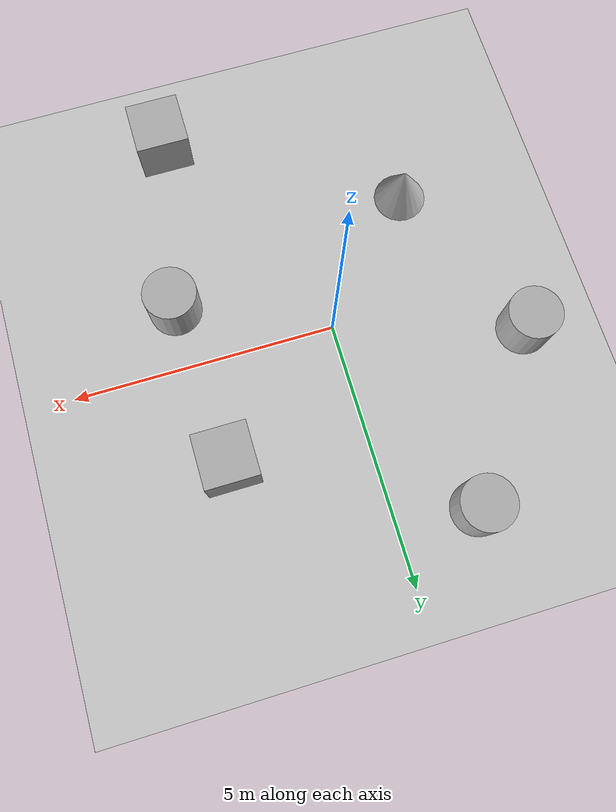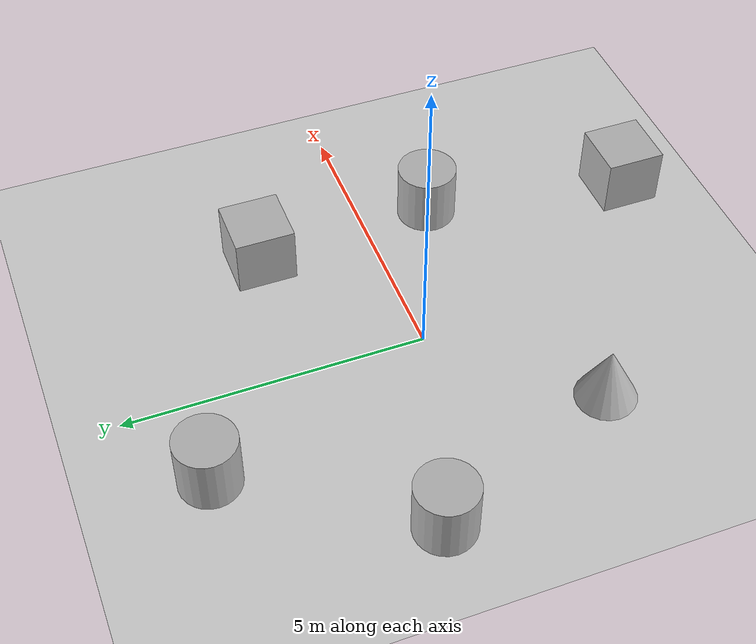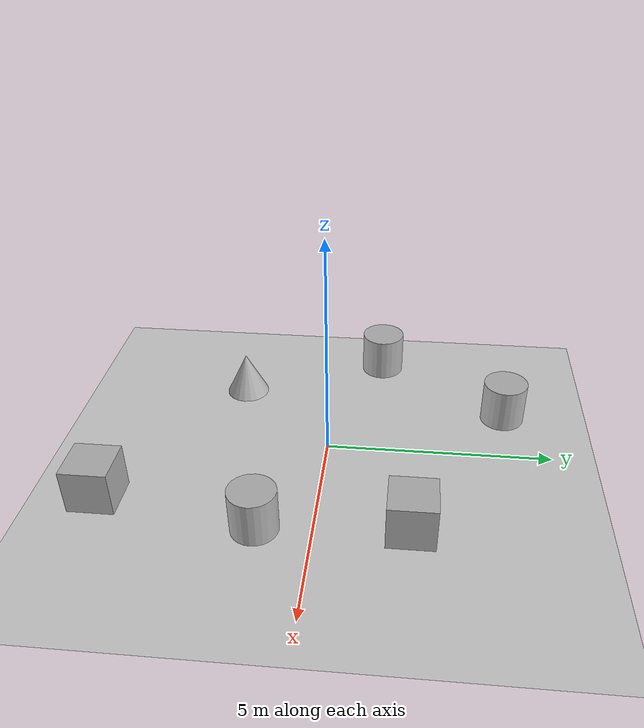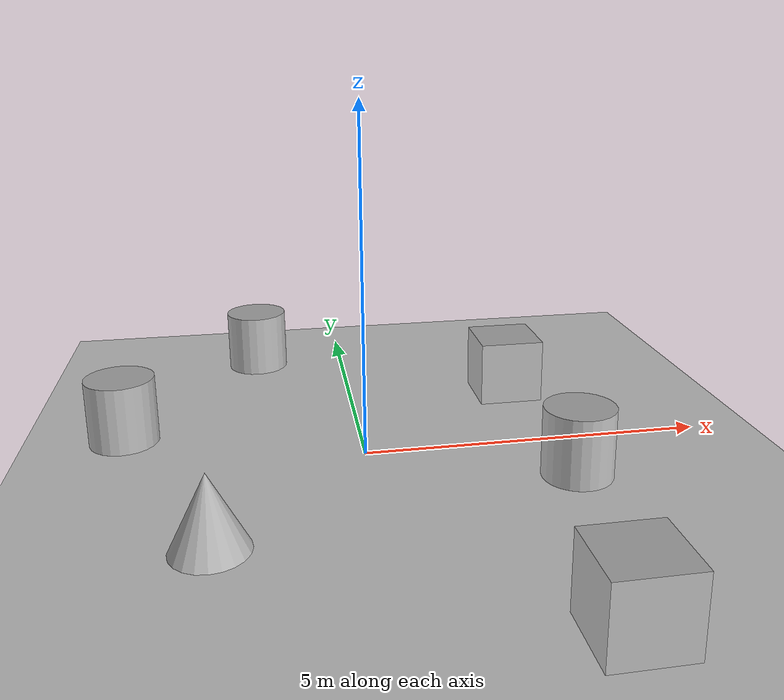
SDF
<sdf version='1.10'>
  <world name='empty'>
    <physics name='1ms' type='ignored'>
      <max_step_size>0.001</max_step_size>
      <real_time_factor>1</real_time_factor>
      <real_time_update_rate>1000</real_time_update_rate>
    </physics>
    <plugin name='gz::sim::systems::Physics' filename='gz-sim-physics-system'/>
    <plugin name='gz::sim::systems::UserCommands' filename='gz-sim-user-commands-system'/>
    <plugin name='gz::sim::systems::SceneBroadcaster' filename='gz-sim-scene-broadcaster-system'/>
    <plugin name='gz::sim::systems::Contact' filename='gz-sim-contact-system'/>
    <plugin name='gz::sim::systems::Sensors' filename='gz-sim-sensors-system'>
      <render_engine>ogre2</render_engine>
    </plugin>
    <gravity>0 0 -9.8000000000000007</gravity>
    <magnetic_field>5.5644999999999998e-06 2.2875799999999999e-05 -4.2388400000000002e-05</magnetic_field>
    <atmosphere type='adiabatic'/>
    <scene>
      <ambient>0.400000006 0.400000006 0.400000006 1</ambient>
      <background>0.699999988 0.699999988 0.699999988 1</background>
      <shadows>true</shadows>
    </scene>
    <model name='ground_plane'>
      <static>true</static>
      <link name='link'>
        <collision name='collision'>
          <geometry>
            <plane>
              <normal>0 0 1</normal>
              <size>100 100</size>
            </plane>
          </geometry>
          <surface>
            <friction>
              <ode/>
            </friction>
            <bounce/>
            <contact/>
          </surface>
        </collision>
        <visual name='visual'>
          <geometry>
            <plane>
              <normal>0 0 1</normal>
              <size>100 100</size>
            </plane>
          </geometry>
          <material>
            <ambient>0.800000012 0.800000012 0.800000012 1</ambient>
            <diffuse>0.800000012 0.800000012 0.800000012 1</diffuse>
            <specular>0.800000012 0.800000012 0.800000012 1</specular>
          </material>
        </visual>
        <pose>0 0 0 0 0 0</pose>
        <inertial>
          <pose>0 0 0 0 0 0</pose>
          <mass>1</mass>
          <inertia>
            <ixx>1</ixx>
            <ixy>0</ixy>
            <ixz>0</ixz>
            <iyy>1</iyy>
            <iyz>0</iyz>
            <izz>1</izz>
          </inertia>
        </inertial>
        <enable_wind>false</enable_wind>
      </link>
      <pose>0 0 0 0 0 0</pose>
      <self_collide>false</self_collide>
    </model>
    <model name='box'>
      <pose>2.5609007470930312 1.9506825374560055 0.49999999990199806 6.2287739151293738e-22 9.3279666454713669e-22 -3.6315533669320137e-22</pose>
      <link name='box_link'>
        <inertial>
          <inertia>
            <ixx>0.16666</ixx>
            <ixy>0</ixy>
            <ixz>0</ixz>
            <iyy>0.16666</iyy>
            <iyz>0</iyz>
            <izz>0.16666</izz>
          </inertia>
          <mass>1</mass>
          <pose>0 0 0 0 0 0</pose>
        </inertial>
        <collision name='box_collision'>
          <geometry>
            <box>
              <size>1 1 1</size>
            </box>
          </geometry>
          <surface>
            <friction>
              <ode/>
            </friction>
            <bounce/>
            <contact/>
          </surface>
        </collision>
        <visual name='box_visual'>
          <geometry>
            <box>
              <size>1 1 1</size>
            </box>
          </geometry>
          <material>
            <ambient>0.300000012 0.300000012 0.300000012 1</ambient>
            <diffuse>0.699999988 0.699999988 0.699999988 1</diffuse>
            <specular>1 1 1 1</specular>
          </material>
        </visual>
        <pose>0 0 0 0 0 0</pose>
        <enable_wind>false</enable_wind>
      </link>
      <static>false</static>
      <self_collide>false</self_collide>
    </model>
    <model name='cylinder'>
      <pose>2.7634446149589946 -1.1643157360190437 0.49999942638036005 2.3280539507145173e-19 -1.1382947688105112e-19 -2.008550885494838e-20</pose>
      <link name='cylinder_link'>
        <inertial>
          <inertia>
            <ixx>0.14580000000000001</ixx>
            <ixy>0</ixy>
            <ixz>0</ixz>
            <iyy>0.14580000000000001</iyy>
            <iyz>0</iyz>
            <izz>0.125</izz>
          </inertia>
          <mass>1</mass>
          <pose>0 0 0 0 0 0</pose>
        </inertial>
        <collision name='cylinder_collision'>
          <geometry>
            <cylinder>
              <radius>0.5</radius>
              <length>1</length>
            </cylinder>
          </geometry>
          <surface>
            <friction>
              <ode/>
            </friction>
            <bounce/>
            <contact/>
          </surface>
        </collision>
        <visual name='cylinder_visual'>
          <geometry>
            <cylinder>
              <radius>0.5</radius>
              <length>1</length>
            </cylinder>
          </geometry>
          <material>
            <ambient>0.300000012 0.300000012 0.300000012 1</ambient>
            <diffuse>0.699999988 0.699999988 0.699999988 1</diffuse>
            <specular>1 1 1 1</specular>
          </material>
        </visual>
        <pose>0 0 0 0 0 0</pose>
        <enable_wind>false</enable_wind>
      </link>
      <static>false</static>
      <self_collide>false</self_collide>
    </model>
    <model name='cylinder_0'>
      <pose>-1.48279598352745 3.9860280485569701 0.49999942638036005 -6.1973299190083481e-20 2.187029868481269e-19 9.6697139434562842e-21</pose>
      <link name='cylinder_link'>
        <inertial>
          <inertia>
            <ixx>0.14580000000000001</ixx>
            <ixy>0</ixy>
            <ixz>0</ixz>
            <iyy>0.14580000000000001</iyy>
            <iyz>0</iyz>
            <izz>0.125</izz>
          </inertia>
          <mass>1</mass>
          <pose>0 0 0 0 0 0</pose>
        </inertial>
        <collision name='cylinder_collision'>
          <geometry>
            <cylinder>
              <radius>0.5</radius>
              <length>1</length>
            </cylinder>
          </geometry>
          <surface>
            <friction>
              <ode/>
            </friction>
            <bounce/>
            <contact/>
          </surface>
        </collision>
        <visual name='cylinder_visual'>
          <geometry>
            <cylinder>
              <radius>0.5</radius>
              <length>1</length>
            </cylinder>
          </geometry>
          <material>
            <ambient>0.300000012 0.300000012 0.300000012 1</ambient>
            <diffuse>0.699999988 0.699999988 0.699999988 1</diffuse>
            <specular>1 1 1 1</specular>
          </material>
        </visual>
        <pose>0 0 0 0 0 0</pose>
        <enable_wind>false</enable_wind>
      </link>
      <static>false</static>
      <self_collide>false</self_collide>
    </model>
    <model name='cone'>
      <pose>-2.0857470713140929 -2.2208443900513597 0.49999999993296756 5.2544591086068952e-17 -7.7132841037290368e-10 -3.4184866375544543e-23</pose>
      <link name='cone_link'>
        <inertial>
          <inertia>
            <ixx>0.074999999999999997</ixx>
            <ixy>0</ixy>
            <ixz>0</ixz>
            <iyy>0.074999999999999997</iyy>
            <iyz>0</iyz>
            <izz>0.074999999999999997</izz>
          </inertia>
          <mass>1</mass>
          <pose>0 0 0 0 0 0</pose>
        </inertial>
        <collision name='cone_collision'>
          <geometry>
            <cone>
              <radius>0.5</radius>
              <length>1</length>
            </cone>
          </geometry>
          <surface>
            <friction>
              <ode/>
            </friction>
            <bounce/>
            <contact/>
          </surface>
        </collision>
        <visual name='cone_visual'>
          <geometry>
            <cone>
              <radius>0.5</radius>
              <length>1</length>
            </cone>
          </geometry>
          <material>
            <ambient>0.300000012 0.300000012 0.300000012 1</ambient>
            <diffuse>0.699999988 0.699999988 0.699999988 1</diffuse>
            <specular>1 1 1 1</specular>
          </material>
        </visual>
        <pose>0 0 0 0 0 0</pose>
        <enable_wind>false</enable_wind>
      </link>
      <static>false</static>
      <self_collide>false</self_collide>
    </model>
    <model name='cylinder_1'>
      <pose>-3.4529609910517358 1.0485317341110332 0.49999942638036005 5.6192740084012391e-20 9.7238145155787788e-20 -2.725949169122631e-21</pose>
      <link name='cylinder_link'>
        <inertial>
          <inertia>
            <ixx>0.14580000000000001</ixx>
            <ixy>0</ixy>
            <ixz>0</ixz>
            <iyy>0.14580000000000001</iyy>
            <iyz>0</iyz>
            <izz>0.125</izz>
          </inertia>
          <mass>1</mass>
          <pose>0 0 0 0 0 0</pose>
        </inertial>
        <collision name='cylinder_collision'>
          <geometry>
            <cylinder>
              <radius>0.5</radius>
              <length>1</length>
            </cylinder>
          </geometry>
          <surface>
            <friction>
              <ode/>
            </friction>
            <bounce/>
            <contact/>
          </surface>
        </collision>
        <visual name='cylinder_visual'>
          <geometry>
            <cylinder>
              <radius>0.5</radius>
              <length>1</length>
            </cylinder>
          </geometry>
          <material>
            <ambient>0.300000012 0.300000012 0.300000012 1</ambient>
            <diffuse>0.699999988 0.699999988 0.699999988 1</diffuse>
            <specular>1 1 1 1</specular>
          </material>
        </visual>
        <pose>0 0 0 0 0 0</pose>
        <enable_wind>false</enable_wind>
      </link>
      <static>false</static>
      <self_collide>false</self_collide>
    </model>
    <model name='box_0'>
      <pose>2.1511774554843894 -4.5912205207749581 0.49999999990199806 6.2287739151293738e-22 9.3279666454713669e-22 -3.6315533669320137e-22</pose>
      <link name='box_link'>
        <inertial>
          <inertia>
            <ixx>0.16666</ixx>
            <ixy>0</ixy>
            <ixz>0</ixz>
            <iyy>0.16666</iyy>
            <iyz>0</iyz>
            <izz>0.16666</izz>
          </inertia>
          <mass>1</mass>
          <pose>0 0 0 0 0 0</pose>
        </inertial>
        <collision name='box_collision'>
          <geometry>
            <box>
              <size>1 1 1</size>
            </box>
          </geometry>
          <surface>
            <friction>
              <ode/>
            </friction>
            <bounce/>
            <contact/>
          </surface>
        </collision>
        <visual name='box_visual'>
          <geometry>
            <box>
              <size>1 1 1</size>
            </box>
          </geometry>
          <material>
            <ambient>0.300000012 0.300000012 0.300000012 1</ambient>
            <diffuse>0.699999988 0.699999988 0.699999988 1</diffuse>
            <specular>1 1 1 1</specular>
          </material>
        </visual>
        <pose>0 0 0 0 0 0</pose>
        <enable_wind>false</enable_wind>
      </link>
      <static>false</static>
      <self_collide>false</self_collide>
    </model>
    <light name='sun' type='directional'>
      <pose>0 0 10 0 0 0</pose>
      <cast_shadows>true</cast_shadows>
      <intensity>1</intensity>
      <direction>-0.5 0.10000000000000001 -0.90000000000000002</direction>
      <diffuse>0.800000012 0.800000012 0.800000012 1</diffuse>
      <specular>0.200000003 0.200000003 0.200000003 1</specular>
      <attenuation>
        <range>1000</range>
        <linear>0.01</linear>
        <constant>0.90000000000000002</constant>
        <quadratic>0.001</quadratic>
      </attenuation>
      <spot>
        <inner_angle>0</inner_angle>
        <outer_angle>0</outer_angle>
        <falloff>0</falloff>
      </spot>
    </light>
  </world>
</sdf>
